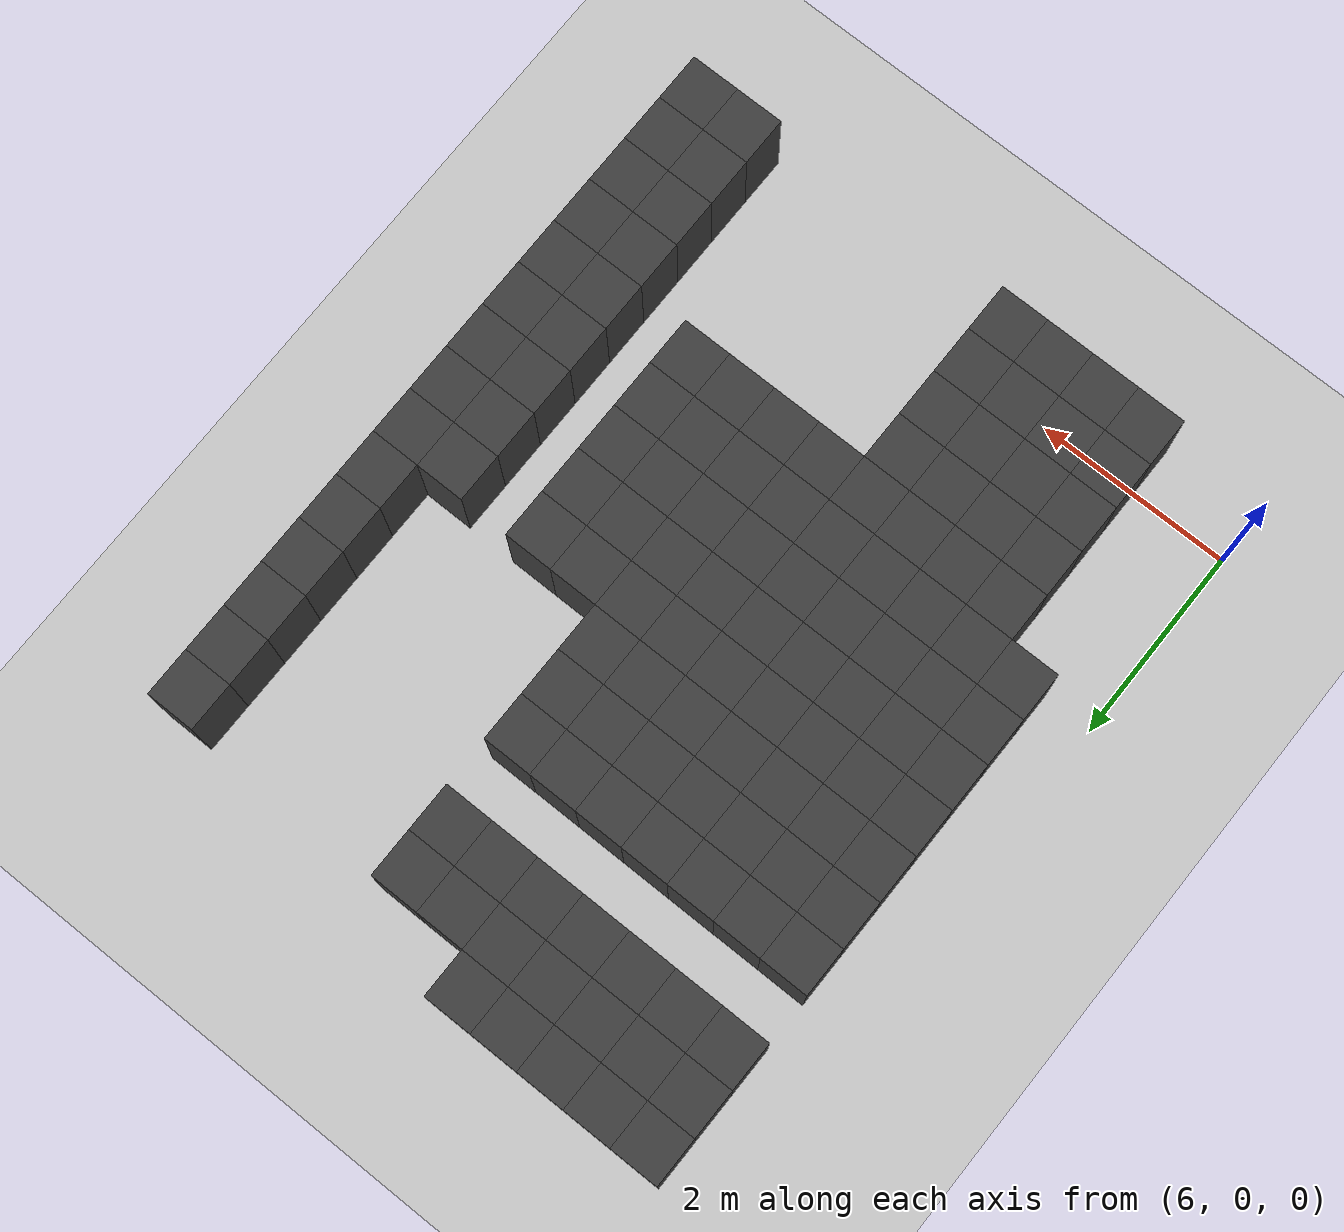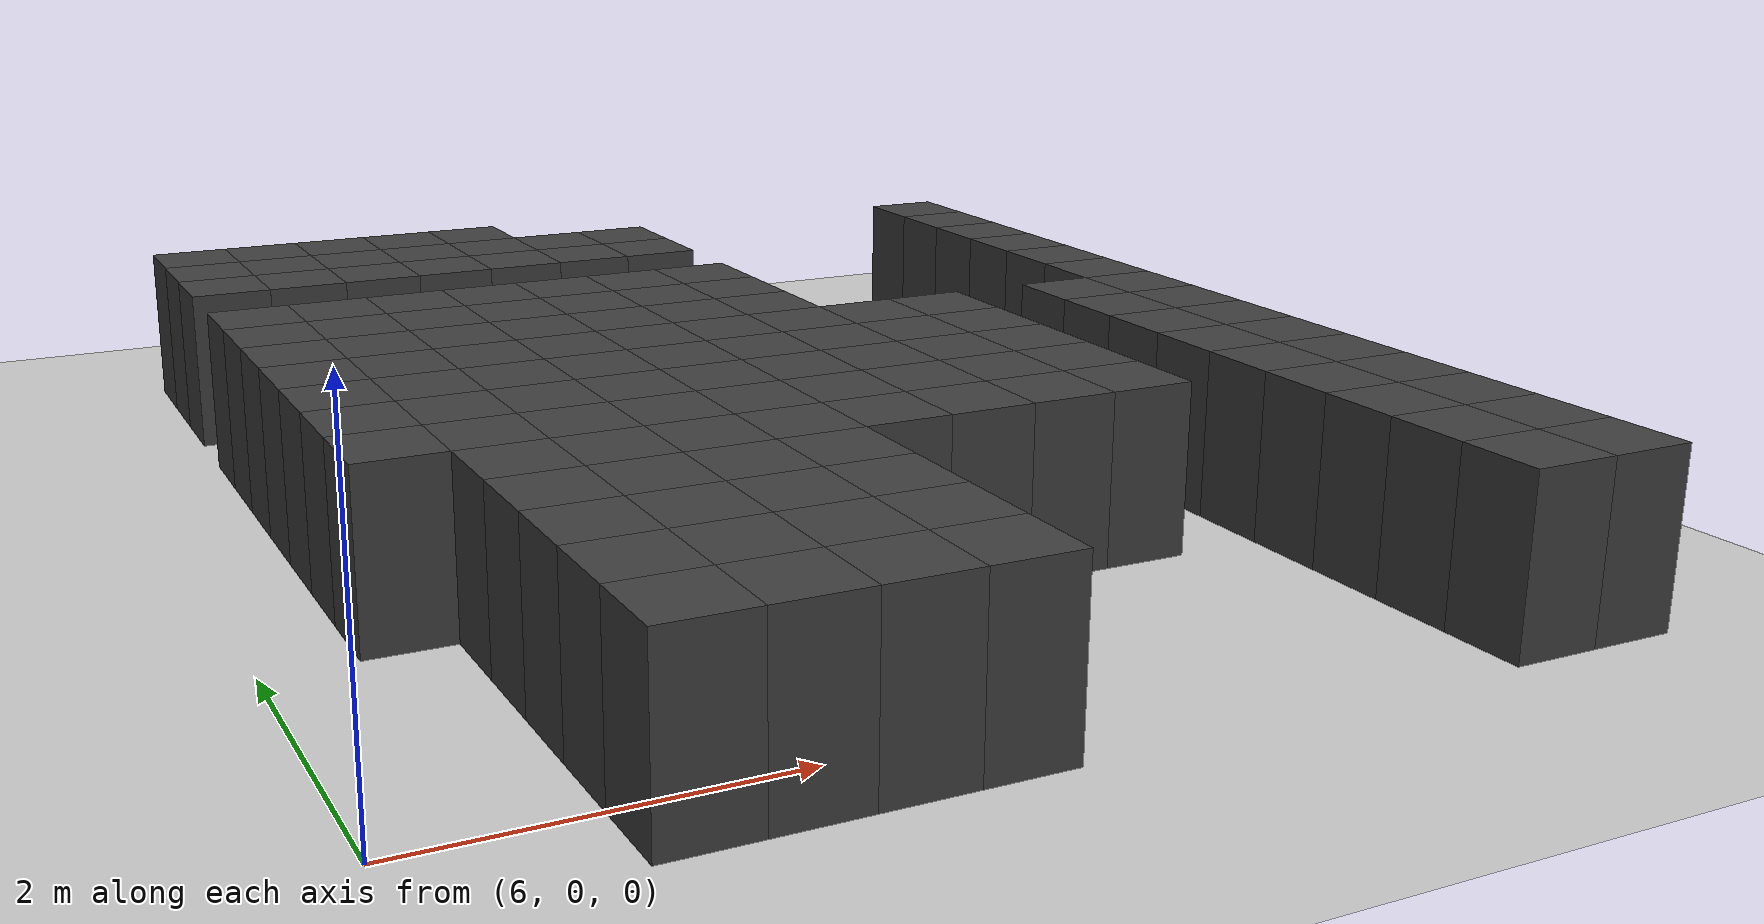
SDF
<sdf version="1.7">
 <world name="map_14074">
  <model name="ground_plane">
   <static>true</static>
   <link name="link">
    <collision name="collision">
     <geometry><plane><normal>0 0 1</normal><size>200 200</size></plane></geometry>
    </collision>
    <visual name="visual">
     <geometry><plane><normal>0 0 1</normal><size>200 200</size></plane></geometry>
     <material><ambient>0.8 0.8 0.8 1</ambient><diffuse>0.8 0.8 0.8 1</diffuse></material>
    </visual>
   </link>
  </model>
  <model name="maze_environment">
   <static>true</static>
   <link name="wall_514">
    <pose>6.750 7.250 0.500 0 0 0</pose>
    <collision name="col"><geometry><box><size>0.5 0.5 1.0</size></box></geometry></collision>
    <visual name="vis">
     <geometry><box><size>0.5 0.5 1.0</size></box></geometry>
     <material><ambient>0.15 0.15 0.15 1</ambient><diffuse>0.25 0.25 0.25 1</diffuse></material>
    </visual>
   </link>
   <link name="wall_515">
    <pose>7.250 7.250 0.500 0 0 0</pose>
    <collision name="col"><geometry><box><size>0.5 0.5 1.0</size></box></geometry></collision>
    <visual name="vis">
     <geometry><box><size>0.5 0.5 1.0</size></box></geometry>
     <material><ambient>0.15 0.15 0.15 1</ambient><diffuse>0.25 0.25 0.25 1</diffuse></material>
    </visual>
   </link>
   <link name="wall_516">
    <pose>7.750 7.250 0.500 0 0 0</pose>
    <collision name="col"><geometry><box><size>0.5 0.5 1.0</size></box></geometry></collision>
    <visual name="vis">
     <geometry><box><size>0.5 0.5 1.0</size></box></geometry>
     <material><ambient>0.15 0.15 0.15 1</ambient><diffuse>0.25 0.25 0.25 1</diffuse></material>
    </visual>
   </link>
   <link name="wall_517">
    <pose>8.250 7.250 0.500 0 0 0</pose>
    <collision name="col"><geometry><box><size>0.5 0.5 1.0</size></box></geometry></collision>
    <visual name="vis">
     <geometry><box><size>0.5 0.5 1.0</size></box></geometry>
     <material><ambient>0.15 0.15 0.15 1</ambient><diffuse>0.25 0.25 0.25 1</diffuse></material>
    </visual>
   </link>
   <link name="wall_518">
    <pose>8.750 7.250 0.500 0 0 0</pose>
    <collision name="col"><geometry><box><size>0.5 0.5 1.0</size></box></geometry></collision>
    <visual name="vis">
     <geometry><box><size>0.5 0.5 1.0</size></box></geometry>
     <material><ambient>0.15 0.15 0.15 1</ambient><diffuse>0.25 0.25 0.25 1</diffuse></material>
    </visual>
   </link>
   <link name="wall_549">
    <pose>6.750 6.750 0.500 0 0 0</pose>
    <collision name="col"><geometry><box><size>0.5 0.5 1.0</size></box></geometry></collision>
    <visual name="vis">
     <geometry><box><size>0.5 0.5 1.0</size></box></geometry>
     <material><ambient>0.15 0.15 0.15 1</ambient><diffuse>0.25 0.25 0.25 1</diffuse></material>
    </visual>
   </link>
   <link name="wall_550">
    <pose>7.250 6.750 0.500 0 0 0</pose>
    <collision name="col"><geometry><box><size>0.5 0.5 1.0</size></box></geometry></collision>
    <visual name="vis">
     <geometry><box><size>0.5 0.5 1.0</size></box></geometry>
     <material><ambient>0.15 0.15 0.15 1</ambient><diffuse>0.25 0.25 0.25 1</diffuse></material>
    </visual>
   </link>
   <link name="wall_551">
    <pose>7.750 6.750 0.500 0 0 0</pose>
    <collision name="col"><geometry><box><size>0.5 0.5 1.0</size></box></geometry></collision>
    <visual name="vis">
     <geometry><box><size>0.5 0.5 1.0</size></box></geometry>
     <material><ambient>0.15 0.15 0.15 1</ambient><diffuse>0.25 0.25 0.25 1</diffuse></material>
    </visual>
   </link>
   <link name="wall_552">
    <pose>8.250 6.750 0.500 0 0 0</pose>
    <collision name="col"><geometry><box><size>0.5 0.5 1.0</size></box></geometry></collision>
    <visual name="vis">
     <geometry><box><size>0.5 0.5 1.0</size></box></geometry>
     <material><ambient>0.15 0.15 0.15 1</ambient><diffuse>0.25 0.25 0.25 1</diffuse></material>
    </visual>
   </link>
   <link name="wall_553">
    <pose>8.750 6.750 0.500 0 0 0</pose>
    <collision name="col"><geometry><box><size>0.5 0.5 1.0</size></box></geometry></collision>
    <visual name="vis">
     <geometry><box><size>0.5 0.5 1.0</size></box></geometry>
     <material><ambient>0.15 0.15 0.15 1</ambient><diffuse>0.25 0.25 0.25 1</diffuse></material>
    </visual>
   </link>
   <link name="wall_554">
    <pose>9.250 6.750 0.500 0 0 0</pose>
    <collision name="col"><geometry><box><size>0.5 0.5 1.0</size></box></geometry></collision>
    <visual name="vis">
     <geometry><box><size>0.5 0.5 1.0</size></box></geometry>
     <material><ambient>0.15 0.15 0.15 1</ambient><diffuse>0.25 0.25 0.25 1</diffuse></material>
    </visual>
   </link>
   <link name="wall_555">
    <pose>9.750 6.750 0.500 0 0 0</pose>
    <collision name="col"><geometry><box><size>0.5 0.5 1.0</size></box></geometry></collision>
    <visual name="vis">
     <geometry><box><size>0.5 0.5 1.0</size></box></geometry>
     <material><ambient>0.15 0.15 0.15 1</ambient><diffuse>0.25 0.25 0.25 1</diffuse></material>
    </visual>
   </link>
   <link name="wall_556">
    <pose>12.250 6.750 0.500 0 0 0</pose>
    <collision name="col"><geometry><box><size>0.5 0.5 1.0</size></box></geometry></collision>
    <visual name="vis">
     <geometry><box><size>0.5 0.5 1.0</size></box></geometry>
     <material><ambient>0.15 0.15 0.15 1</ambient><diffuse>0.25 0.25 0.25 1</diffuse></material>
    </visual>
   </link>
   <link name="wall_579">
    <pose>6.750 6.250 0.500 0 0 0</pose>
    <collision name="col"><geometry><box><size>0.5 0.5 1.0</size></box></geometry></collision>
    <visual name="vis">
     <geometry><box><size>0.5 0.5 1.0</size></box></geometry>
     <material><ambient>0.15 0.15 0.15 1</ambient><diffuse>0.25 0.25 0.25 1</diffuse></material>
    </visual>
   </link>
   <link name="wall_580">
    <pose>7.250 6.250 0.500 0 0 0</pose>
    <collision name="col"><geometry><box><size>0.5 0.5 1.0</size></box></geometry></collision>
    <visual name="vis">
     <geometry><box><size>0.5 0.5 1.0</size></box></geometry>
     <material><ambient>0.15 0.15 0.15 1</ambient><diffuse>0.25 0.25 0.25 1</diffuse></material>
    </visual>
   </link>
   <link name="wall_581">
    <pose>7.750 6.250 0.500 0 0 0</pose>
    <collision name="col"><geometry><box><size>0.5 0.5 1.0</size></box></geometry></collision>
    <visual name="vis">
     <geometry><box><size>0.5 0.5 1.0</size></box></geometry>
     <material><ambient>0.15 0.15 0.15 1</ambient><diffuse>0.25 0.25 0.25 1</diffuse></material>
    </visual>
   </link>
   <link name="wall_582">
    <pose>8.250 6.250 0.500 0 0 0</pose>
    <collision name="col"><geometry><box><size>0.5 0.5 1.0</size></box></geometry></collision>
    <visual name="vis">
     <geometry><box><size>0.5 0.5 1.0</size></box></geometry>
     <material><ambient>0.15 0.15 0.15 1</ambient><diffuse>0.25 0.25 0.25 1</diffuse></material>
    </visual>
   </link>
   <link name="wall_583">
    <pose>8.750 6.250 0.500 0 0 0</pose>
    <collision name="col"><geometry><box><size>0.5 0.5 1.0</size></box></geometry></collision>
    <visual name="vis">
     <geometry><box><size>0.5 0.5 1.0</size></box></geometry>
     <material><ambient>0.15 0.15 0.15 1</ambient><diffuse>0.25 0.25 0.25 1</diffuse></material>
    </visual>
   </link>
   <link name="wall_584">
    <pose>9.250 6.250 0.500 0 0 0</pose>
    <collision name="col"><geometry><box><size>0.5 0.5 1.0</size></box></geometry></collision>
    <visual name="vis">
     <geometry><box><size>0.5 0.5 1.0</size></box></geometry>
     <material><ambient>0.15 0.15 0.15 1</ambient><diffuse>0.25 0.25 0.25 1</diffuse></material>
    </visual>
   </link>
   <link name="wall_585">
    <pose>9.750 6.250 0.500 0 0 0</pose>
    <collision name="col"><geometry><box><size>0.5 0.5 1.0</size></box></geometry></collision>
    <visual name="vis">
     <geometry><box><size>0.5 0.5 1.0</size></box></geometry>
     <material><ambient>0.15 0.15 0.15 1</ambient><diffuse>0.25 0.25 0.25 1</diffuse></material>
    </visual>
   </link>
   <link name="wall_586">
    <pose>12.250 6.250 0.500 0 0 0</pose>
    <collision name="col"><geometry><box><size>0.5 0.5 1.0</size></box></geometry></collision>
    <visual name="vis">
     <geometry><box><size>0.5 0.5 1.0</size></box></geometry>
     <material><ambient>0.15 0.15 0.15 1</ambient><diffuse>0.25 0.25 0.25 1</diffuse></material>
    </visual>
   </link>
   <link name="wall_607">
    <pose>12.250 5.750 0.500 0 0 0</pose>
    <collision name="col"><geometry><box><size>0.5 0.5 1.0</size></box></geometry></collision>
    <visual name="vis">
     <geometry><box><size>0.5 0.5 1.0</size></box></geometry>
     <material><ambient>0.15 0.15 0.15 1</ambient><diffuse>0.25 0.25 0.25 1</diffuse></material>
    </visual>
   </link>
   <link name="wall_630">
    <pose>6.750 5.250 0.500 0 0 0</pose>
    <collision name="col"><geometry><box><size>0.5 0.5 1.0</size></box></geometry></collision>
    <visual name="vis">
     <geometry><box><size>0.5 0.5 1.0</size></box></geometry>
     <material><ambient>0.15 0.15 0.15 1</ambient><diffuse>0.25 0.25 0.25 1</diffuse></material>
    </visual>
   </link>
   <link name="wall_631">
    <pose>7.250 5.250 0.500 0 0 0</pose>
    <collision name="col"><geometry><box><size>0.5 0.5 1.0</size></box></geometry></collision>
    <visual name="vis">
     <geometry><box><size>0.5 0.5 1.0</size></box></geometry>
     <material><ambient>0.15 0.15 0.15 1</ambient><diffuse>0.25 0.25 0.25 1</diffuse></material>
    </visual>
   </link>
   <link name="wall_632">
    <pose>7.750 5.250 0.500 0 0 0</pose>
    <collision name="col"><geometry><box><size>0.5 0.5 1.0</size></box></geometry></collision>
    <visual name="vis">
     <geometry><box><size>0.5 0.5 1.0</size></box></geometry>
     <material><ambient>0.15 0.15 0.15 1</ambient><diffuse>0.25 0.25 0.25 1</diffuse></material>
    </visual>
   </link>
   <link name="wall_633">
    <pose>8.250 5.250 0.500 0 0 0</pose>
    <collision name="col"><geometry><box><size>0.5 0.5 1.0</size></box></geometry></collision>
    <visual name="vis">
     <geometry><box><size>0.5 0.5 1.0</size></box></geometry>
     <material><ambient>0.15 0.15 0.15 1</ambient><diffuse>0.25 0.25 0.25 1</diffuse></material>
    </visual>
   </link>
   <link name="wall_634">
    <pose>8.750 5.250 0.500 0 0 0</pose>
    <collision name="col"><geometry><box><size>0.5 0.5 1.0</size></box></geometry></collision>
    <visual name="vis">
     <geometry><box><size>0.5 0.5 1.0</size></box></geometry>
     <material><ambient>0.15 0.15 0.15 1</ambient><diffuse>0.25 0.25 0.25 1</diffuse></material>
    </visual>
   </link>
   <link name="wall_635">
    <pose>9.250 5.250 0.500 0 0 0</pose>
    <collision name="col"><geometry><box><size>0.5 0.5 1.0</size></box></geometry></collision>
    <visual name="vis">
     <geometry><box><size>0.5 0.5 1.0</size></box></geometry>
     <material><ambient>0.15 0.15 0.15 1</ambient><diffuse>0.25 0.25 0.25 1</diffuse></material>
    </visual>
   </link>
   <link name="wall_636">
    <pose>9.750 5.250 0.500 0 0 0</pose>
    <collision name="col"><geometry><box><size>0.5 0.5 1.0</size></box></geometry></collision>
    <visual name="vis">
     <geometry><box><size>0.5 0.5 1.0</size></box></geometry>
     <material><ambient>0.15 0.15 0.15 1</ambient><diffuse>0.25 0.25 0.25 1</diffuse></material>
    </visual>
   </link>
   <link name="wall_637">
    <pose>12.250 5.250 0.500 0 0 0</pose>
    <collision name="col"><geometry><box><size>0.5 0.5 1.0</size></box></geometry></collision>
    <visual name="vis">
     <geometry><box><size>0.5 0.5 1.0</size></box></geometry>
     <material><ambient>0.15 0.15 0.15 1</ambient><diffuse>0.25 0.25 0.25 1</diffuse></material>
    </visual>
   </link>
   <link name="wall_664">
    <pose>6.750 4.750 0.500 0 0 0</pose>
    <collision name="col"><geometry><box><size>0.5 0.5 1.0</size></box></geometry></collision>
    <visual name="vis">
     <geometry><box><size>0.5 0.5 1.0</size></box></geometry>
     <material><ambient>0.15 0.15 0.15 1</ambient><diffuse>0.25 0.25 0.25 1</diffuse></material>
    </visual>
   </link>
   <link name="wall_665">
    <pose>7.250 4.750 0.500 0 0 0</pose>
    <collision name="col"><geometry><box><size>0.5 0.5 1.0</size></box></geometry></collision>
    <visual name="vis">
     <geometry><box><size>0.5 0.5 1.0</size></box></geometry>
     <material><ambient>0.15 0.15 0.15 1</ambient><diffuse>0.25 0.25 0.25 1</diffuse></material>
    </visual>
   </link>
   <link name="wall_666">
    <pose>7.750 4.750 0.500 0 0 0</pose>
    <collision name="col"><geometry><box><size>0.5 0.5 1.0</size></box></geometry></collision>
    <visual name="vis">
     <geometry><box><size>0.5 0.5 1.0</size></box></geometry>
     <material><ambient>0.15 0.15 0.15 1</ambient><diffuse>0.25 0.25 0.25 1</diffuse></material>
    </visual>
   </link>
   <link name="wall_667">
    <pose>8.250 4.750 0.500 0 0 0</pose>
    <collision name="col"><geometry><box><size>0.5 0.5 1.0</size></box></geometry></collision>
    <visual name="vis">
     <geometry><box><size>0.5 0.5 1.0</size></box></geometry>
     <material><ambient>0.15 0.15 0.15 1</ambient><diffuse>0.25 0.25 0.25 1</diffuse></material>
    </visual>
   </link>
   <link name="wall_668">
    <pose>8.750 4.750 0.500 0 0 0</pose>
    <collision name="col"><geometry><box><size>0.5 0.5 1.0</size></box></geometry></collision>
    <visual name="vis">
     <geometry><box><size>0.5 0.5 1.0</size></box></geometry>
     <material><ambient>0.15 0.15 0.15 1</ambient><diffuse>0.25 0.25 0.25 1</diffuse></material>
    </visual>
   </link>
   <link name="wall_669">
    <pose>9.250 4.750 0.500 0 0 0</pose>
    <collision name="col"><geometry><box><size>0.5 0.5 1.0</size></box></geometry></collision>
    <visual name="vis">
     <geometry><box><size>0.5 0.5 1.0</size></box></geometry>
     <material><ambient>0.15 0.15 0.15 1</ambient><diffuse>0.25 0.25 0.25 1</diffuse></material>
    </visual>
   </link>
   <link name="wall_670">
    <pose>9.750 4.750 0.500 0 0 0</pose>
    <collision name="col"><geometry><box><size>0.5 0.5 1.0</size></box></geometry></collision>
    <visual name="vis">
     <geometry><box><size>0.5 0.5 1.0</size></box></geometry>
     <material><ambient>0.15 0.15 0.15 1</ambient><diffuse>0.25 0.25 0.25 1</diffuse></material>
    </visual>
   </link>
   <link name="wall_671">
    <pose>12.250 4.750 0.500 0 0 0</pose>
    <collision name="col"><geometry><box><size>0.5 0.5 1.0</size></box></geometry></collision>
    <visual name="vis">
     <geometry><box><size>0.5 0.5 1.0</size></box></geometry>
     <material><ambient>0.15 0.15 0.15 1</ambient><diffuse>0.25 0.25 0.25 1</diffuse></material>
    </visual>
   </link>
   <link name="wall_689">
    <pose>6.750 4.250 0.500 0 0 0</pose>
    <collision name="col"><geometry><box><size>0.5 0.5 1.0</size></box></geometry></collision>
    <visual name="vis">
     <geometry><box><size>0.5 0.5 1.0</size></box></geometry>
     <material><ambient>0.15 0.15 0.15 1</ambient><diffuse>0.25 0.25 0.25 1</diffuse></material>
    </visual>
   </link>
   <link name="wall_690">
    <pose>7.250 4.250 0.500 0 0 0</pose>
    <collision name="col"><geometry><box><size>0.5 0.5 1.0</size></box></geometry></collision>
    <visual name="vis">
     <geometry><box><size>0.5 0.5 1.0</size></box></geometry>
     <material><ambient>0.15 0.15 0.15 1</ambient><diffuse>0.25 0.25 0.25 1</diffuse></material>
    </visual>
   </link>
   <link name="wall_691">
    <pose>7.750 4.250 0.500 0 0 0</pose>
    <collision name="col"><geometry><box><size>0.5 0.5 1.0</size></box></geometry></collision>
    <visual name="vis">
     <geometry><box><size>0.5 0.5 1.0</size></box></geometry>
     <material><ambient>0.15 0.15 0.15 1</ambient><diffuse>0.25 0.25 0.25 1</diffuse></material>
    </visual>
   </link>
   <link name="wall_692">
    <pose>8.250 4.250 0.500 0 0 0</pose>
    <collision name="col"><geometry><box><size>0.5 0.5 1.0</size></box></geometry></collision>
    <visual name="vis">
     <geometry><box><size>0.5 0.5 1.0</size></box></geometry>
     <material><ambient>0.15 0.15 0.15 1</ambient><diffuse>0.25 0.25 0.25 1</diffuse></material>
    </visual>
   </link>
   <link name="wall_693">
    <pose>8.750 4.250 0.500 0 0 0</pose>
    <collision name="col"><geometry><box><size>0.5 0.5 1.0</size></box></geometry></collision>
    <visual name="vis">
     <geometry><box><size>0.5 0.5 1.0</size></box></geometry>
     <material><ambient>0.15 0.15 0.15 1</ambient><diffuse>0.25 0.25 0.25 1</diffuse></material>
    </visual>
   </link>
   <link name="wall_694">
    <pose>9.250 4.250 0.500 0 0 0</pose>
    <collision name="col"><geometry><box><size>0.5 0.5 1.0</size></box></geometry></collision>
    <visual name="vis">
     <geometry><box><size>0.5 0.5 1.0</size></box></geometry>
     <material><ambient>0.15 0.15 0.15 1</ambient><diffuse>0.25 0.25 0.25 1</diffuse></material>
    </visual>
   </link>
   <link name="wall_695">
    <pose>9.750 4.250 0.500 0 0 0</pose>
    <collision name="col"><geometry><box><size>0.5 0.5 1.0</size></box></geometry></collision>
    <visual name="vis">
     <geometry><box><size>0.5 0.5 1.0</size></box></geometry>
     <material><ambient>0.15 0.15 0.15 1</ambient><diffuse>0.25 0.25 0.25 1</diffuse></material>
    </visual>
   </link>
   <link name="wall_696">
    <pose>12.250 4.250 0.500 0 0 0</pose>
    <collision name="col"><geometry><box><size>0.5 0.5 1.0</size></box></geometry></collision>
    <visual name="vis">
     <geometry><box><size>0.5 0.5 1.0</size></box></geometry>
     <material><ambient>0.15 0.15 0.15 1</ambient><diffuse>0.25 0.25 0.25 1</diffuse></material>
    </visual>
   </link>
   <link name="wall_714">
    <pose>6.750 3.750 0.500 0 0 0</pose>
    <collision name="col"><geometry><box><size>0.5 0.5 1.0</size></box></geometry></collision>
    <visual name="vis">
     <geometry><box><size>0.5 0.5 1.0</size></box></geometry>
     <material><ambient>0.15 0.15 0.15 1</ambient><diffuse>0.25 0.25 0.25 1</diffuse></material>
    </visual>
   </link>
   <link name="wall_715">
    <pose>7.250 3.750 0.500 0 0 0</pose>
    <collision name="col"><geometry><box><size>0.5 0.5 1.0</size></box></geometry></collision>
    <visual name="vis">
     <geometry><box><size>0.5 0.5 1.0</size></box></geometry>
     <material><ambient>0.15 0.15 0.15 1</ambient><diffuse>0.25 0.25 0.25 1</diffuse></material>
    </visual>
   </link>
   <link name="wall_716">
    <pose>7.750 3.750 0.500 0 0 0</pose>
    <collision name="col"><geometry><box><size>0.5 0.5 1.0</size></box></geometry></collision>
    <visual name="vis">
     <geometry><box><size>0.5 0.5 1.0</size></box></geometry>
     <material><ambient>0.15 0.15 0.15 1</ambient><diffuse>0.25 0.25 0.25 1</diffuse></material>
    </visual>
   </link>
   <link name="wall_717">
    <pose>8.250 3.750 0.500 0 0 0</pose>
    <collision name="col"><geometry><box><size>0.5 0.5 1.0</size></box></geometry></collision>
    <visual name="vis">
     <geometry><box><size>0.5 0.5 1.0</size></box></geometry>
     <material><ambient>0.15 0.15 0.15 1</ambient><diffuse>0.25 0.25 0.25 1</diffuse></material>
    </visual>
   </link>
   <link name="wall_718">
    <pose>8.750 3.750 0.500 0 0 0</pose>
    <collision name="col"><geometry><box><size>0.5 0.5 1.0</size></box></geometry></collision>
    <visual name="vis">
     <geometry><box><size>0.5 0.5 1.0</size></box></geometry>
     <material><ambient>0.15 0.15 0.15 1</ambient><diffuse>0.25 0.25 0.25 1</diffuse></material>
    </visual>
   </link>
   <link name="wall_719">
    <pose>9.250 3.750 0.500 0 0 0</pose>
    <collision name="col"><geometry><box><size>0.5 0.5 1.0</size></box></geometry></collision>
    <visual name="vis">
     <geometry><box><size>0.5 0.5 1.0</size></box></geometry>
     <material><ambient>0.15 0.15 0.15 1</ambient><diffuse>0.25 0.25 0.25 1</diffuse></material>
    </visual>
   </link>
   <link name="wall_720">
    <pose>9.750 3.750 0.500 0 0 0</pose>
    <collision name="col"><geometry><box><size>0.5 0.5 1.0</size></box></geometry></collision>
    <visual name="vis">
     <geometry><box><size>0.5 0.5 1.0</size></box></geometry>
     <material><ambient>0.15 0.15 0.15 1</ambient><diffuse>0.25 0.25 0.25 1</diffuse></material>
    </visual>
   </link>
   <link name="wall_721">
    <pose>10.250 3.750 0.500 0 0 0</pose>
    <collision name="col"><geometry><box><size>0.5 0.5 1.0</size></box></geometry></collision>
    <visual name="vis">
     <geometry><box><size>0.5 0.5 1.0</size></box></geometry>
     <material><ambient>0.15 0.15 0.15 1</ambient><diffuse>0.25 0.25 0.25 1</diffuse></material>
    </visual>
   </link>
   <link name="wall_722">
    <pose>10.750 3.750 0.500 0 0 0</pose>
    <collision name="col"><geometry><box><size>0.5 0.5 1.0</size></box></geometry></collision>
    <visual name="vis">
     <geometry><box><size>0.5 0.5 1.0</size></box></geometry>
     <material><ambient>0.15 0.15 0.15 1</ambient><diffuse>0.25 0.25 0.25 1</diffuse></material>
    </visual>
   </link>
   <link name="wall_723">
    <pose>11.750 3.750 0.500 0 0 0</pose>
    <collision name="col"><geometry><box><size>0.5 0.5 1.0</size></box></geometry></collision>
    <visual name="vis">
     <geometry><box><size>0.5 0.5 1.0</size></box></geometry>
     <material><ambient>0.15 0.15 0.15 1</ambient><diffuse>0.25 0.25 0.25 1</diffuse></material>
    </visual>
   </link>
   <link name="wall_724">
    <pose>12.250 3.750 0.500 0 0 0</pose>
    <collision name="col"><geometry><box><size>0.5 0.5 1.0</size></box></geometry></collision>
    <visual name="vis">
     <geometry><box><size>0.5 0.5 1.0</size></box></geometry>
     <material><ambient>0.15 0.15 0.15 1</ambient><diffuse>0.25 0.25 0.25 1</diffuse></material>
    </visual>
   </link>
   <link name="wall_742">
    <pose>6.750 3.250 0.500 0 0 0</pose>
    <collision name="col"><geometry><box><size>0.5 0.5 1.0</size></box></geometry></collision>
    <visual name="vis">
     <geometry><box><size>0.5 0.5 1.0</size></box></geometry>
     <material><ambient>0.15 0.15 0.15 1</ambient><diffuse>0.25 0.25 0.25 1</diffuse></material>
    </visual>
   </link>
   <link name="wall_743">
    <pose>7.250 3.250 0.500 0 0 0</pose>
    <collision name="col"><geometry><box><size>0.5 0.5 1.0</size></box></geometry></collision>
    <visual name="vis">
     <geometry><box><size>0.5 0.5 1.0</size></box></geometry>
     <material><ambient>0.15 0.15 0.15 1</ambient><diffuse>0.25 0.25 0.25 1</diffuse></material>
    </visual>
   </link>
   <link name="wall_744">
    <pose>7.750 3.250 0.500 0 0 0</pose>
    <collision name="col"><geometry><box><size>0.5 0.5 1.0</size></box></geometry></collision>
    <visual name="vis">
     <geometry><box><size>0.5 0.5 1.0</size></box></geometry>
     <material><ambient>0.15 0.15 0.15 1</ambient><diffuse>0.25 0.25 0.25 1</diffuse></material>
    </visual>
   </link>
   <link name="wall_745">
    <pose>8.250 3.250 0.500 0 0 0</pose>
    <collision name="col"><geometry><box><size>0.5 0.5 1.0</size></box></geometry></collision>
    <visual name="vis">
     <geometry><box><size>0.5 0.5 1.0</size></box></geometry>
     <material><ambient>0.15 0.15 0.15 1</ambient><diffuse>0.25 0.25 0.25 1</diffuse></material>
    </visual>
   </link>
   <link name="wall_746">
    <pose>8.750 3.250 0.500 0 0 0</pose>
    <collision name="col"><geometry><box><size>0.5 0.5 1.0</size></box></geometry></collision>
    <visual name="vis">
     <geometry><box><size>0.5 0.5 1.0</size></box></geometry>
     <material><ambient>0.15 0.15 0.15 1</ambient><diffuse>0.25 0.25 0.25 1</diffuse></material>
    </visual>
   </link>
   <link name="wall_747">
    <pose>9.250 3.250 0.500 0 0 0</pose>
    <collision name="col"><geometry><box><size>0.5 0.5 1.0</size></box></geometry></collision>
    <visual name="vis">
     <geometry><box><size>0.5 0.5 1.0</size></box></geometry>
     <material><ambient>0.15 0.15 0.15 1</ambient><diffuse>0.25 0.25 0.25 1</diffuse></material>
    </visual>
   </link>
   <link name="wall_748">
    <pose>9.750 3.250 0.500 0 0 0</pose>
    <collision name="col"><geometry><box><size>0.5 0.5 1.0</size></box></geometry></collision>
    <visual name="vis">
     <geometry><box><size>0.5 0.5 1.0</size></box></geometry>
     <material><ambient>0.15 0.15 0.15 1</ambient><diffuse>0.25 0.25 0.25 1</diffuse></material>
    </visual>
   </link>
   <link name="wall_749">
    <pose>10.250 3.250 0.500 0 0 0</pose>
    <collision name="col"><geometry><box><size>0.5 0.5 1.0</size></box></geometry></collision>
    <visual name="vis">
     <geometry><box><size>0.5 0.5 1.0</size></box></geometry>
     <material><ambient>0.15 0.15 0.15 1</ambient><diffuse>0.25 0.25 0.25 1</diffuse></material>
    </visual>
   </link>
   <link name="wall_750">
    <pose>10.750 3.250 0.500 0 0 0</pose>
    <collision name="col"><geometry><box><size>0.5 0.5 1.0</size></box></geometry></collision>
    <visual name="vis">
     <geometry><box><size>0.5 0.5 1.0</size></box></geometry>
     <material><ambient>0.15 0.15 0.15 1</ambient><diffuse>0.25 0.25 0.25 1</diffuse></material>
    </visual>
   </link>
   <link name="wall_751">
    <pose>11.750 3.250 0.500 0 0 0</pose>
    <collision name="col"><geometry><box><size>0.5 0.5 1.0</size></box></geometry></collision>
    <visual name="vis">
     <geometry><box><size>0.5 0.5 1.0</size></box></geometry>
     <material><ambient>0.15 0.15 0.15 1</ambient><diffuse>0.25 0.25 0.25 1</diffuse></material>
    </visual>
   </link>
   <link name="wall_752">
    <pose>12.250 3.250 0.500 0 0 0</pose>
    <collision name="col"><geometry><box><size>0.5 0.5 1.0</size></box></geometry></collision>
    <visual name="vis">
     <geometry><box><size>0.5 0.5 1.0</size></box></geometry>
     <material><ambient>0.15 0.15 0.15 1</ambient><diffuse>0.25 0.25 0.25 1</diffuse></material>
    </visual>
   </link>
   <link name="wall_775">
    <pose>6.750 2.750 0.500 0 0 0</pose>
    <collision name="col"><geometry><box><size>0.5 0.5 1.0</size></box></geometry></collision>
    <visual name="vis">
     <geometry><box><size>0.5 0.5 1.0</size></box></geometry>
     <material><ambient>0.15 0.15 0.15 1</ambient><diffuse>0.25 0.25 0.25 1</diffuse></material>
    </visual>
   </link>
   <link name="wall_776">
    <pose>7.250 2.750 0.500 0 0 0</pose>
    <collision name="col"><geometry><box><size>0.5 0.5 1.0</size></box></geometry></collision>
    <visual name="vis">
     <geometry><box><size>0.5 0.5 1.0</size></box></geometry>
     <material><ambient>0.15 0.15 0.15 1</ambient><diffuse>0.25 0.25 0.25 1</diffuse></material>
    </visual>
   </link>
   <link name="wall_777">
    <pose>7.750 2.750 0.500 0 0 0</pose>
    <collision name="col"><geometry><box><size>0.5 0.5 1.0</size></box></geometry></collision>
    <visual name="vis">
     <geometry><box><size>0.5 0.5 1.0</size></box></geometry>
     <material><ambient>0.15 0.15 0.15 1</ambient><diffuse>0.25 0.25 0.25 1</diffuse></material>
    </visual>
   </link>
   <link name="wall_778">
    <pose>8.250 2.750 0.500 0 0 0</pose>
    <collision name="col"><geometry><box><size>0.5 0.5 1.0</size></box></geometry></collision>
    <visual name="vis">
     <geometry><box><size>0.5 0.5 1.0</size></box></geometry>
     <material><ambient>0.15 0.15 0.15 1</ambient><diffuse>0.25 0.25 0.25 1</diffuse></material>
    </visual>
   </link>
   <link name="wall_779">
    <pose>8.750 2.750 0.500 0 0 0</pose>
    <collision name="col"><geometry><box><size>0.5 0.5 1.0</size></box></geometry></collision>
    <visual name="vis">
     <geometry><box><size>0.5 0.5 1.0</size></box></geometry>
     <material><ambient>0.15 0.15 0.15 1</ambient><diffuse>0.25 0.25 0.25 1</diffuse></material>
    </visual>
   </link>
   <link name="wall_780">
    <pose>9.250 2.750 0.500 0 0 0</pose>
    <collision name="col"><geometry><box><size>0.5 0.5 1.0</size></box></geometry></collision>
    <visual name="vis">
     <geometry><box><size>0.5 0.5 1.0</size></box></geometry>
     <material><ambient>0.15 0.15 0.15 1</ambient><diffuse>0.25 0.25 0.25 1</diffuse></material>
    </visual>
   </link>
   <link name="wall_781">
    <pose>9.750 2.750 0.500 0 0 0</pose>
    <collision name="col"><geometry><box><size>0.5 0.5 1.0</size></box></geometry></collision>
    <visual name="vis">
     <geometry><box><size>0.5 0.5 1.0</size></box></geometry>
     <material><ambient>0.15 0.15 0.15 1</ambient><diffuse>0.25 0.25 0.25 1</diffuse></material>
    </visual>
   </link>
   <link name="wall_782">
    <pose>10.250 2.750 0.500 0 0 0</pose>
    <collision name="col"><geometry><box><size>0.5 0.5 1.0</size></box></geometry></collision>
    <visual name="vis">
     <geometry><box><size>0.5 0.5 1.0</size></box></geometry>
     <material><ambient>0.15 0.15 0.15 1</ambient><diffuse>0.25 0.25 0.25 1</diffuse></material>
    </visual>
   </link>
   <link name="wall_783">
    <pose>10.750 2.750 0.500 0 0 0</pose>
    <collision name="col"><geometry><box><size>0.5 0.5 1.0</size></box></geometry></collision>
    <visual name="vis">
     <geometry><box><size>0.5 0.5 1.0</size></box></geometry>
     <material><ambient>0.15 0.15 0.15 1</ambient><diffuse>0.25 0.25 0.25 1</diffuse></material>
    </visual>
   </link>
   <link name="wall_784">
    <pose>11.750 2.750 0.500 0 0 0</pose>
    <collision name="col"><geometry><box><size>0.5 0.5 1.0</size></box></geometry></collision>
    <visual name="vis">
     <geometry><box><size>0.5 0.5 1.0</size></box></geometry>
     <material><ambient>0.15 0.15 0.15 1</ambient><diffuse>0.25 0.25 0.25 1</diffuse></material>
    </visual>
   </link>
   <link name="wall_785">
    <pose>12.250 2.750 0.500 0 0 0</pose>
    <collision name="col"><geometry><box><size>0.5 0.5 1.0</size></box></geometry></collision>
    <visual name="vis">
     <geometry><box><size>0.5 0.5 1.0</size></box></geometry>
     <material><ambient>0.15 0.15 0.15 1</ambient><diffuse>0.25 0.25 0.25 1</diffuse></material>
    </visual>
   </link>
   <link name="wall_816">
    <pose>6.750 2.250 0.500 0 0 0</pose>
    <collision name="col"><geometry><box><size>0.5 0.5 1.0</size></box></geometry></collision>
    <visual name="vis">
     <geometry><box><size>0.5 0.5 1.0</size></box></geometry>
     <material><ambient>0.15 0.15 0.15 1</ambient><diffuse>0.25 0.25 0.25 1</diffuse></material>
    </visual>
   </link>
   <link name="wall_817">
    <pose>7.250 2.250 0.500 0 0 0</pose>
    <collision name="col"><geometry><box><size>0.5 0.5 1.0</size></box></geometry></collision>
    <visual name="vis">
     <geometry><box><size>0.5 0.5 1.0</size></box></geometry>
     <material><ambient>0.15 0.15 0.15 1</ambient><diffuse>0.25 0.25 0.25 1</diffuse></material>
    </visual>
   </link>
   <link name="wall_818">
    <pose>7.750 2.250 0.500 0 0 0</pose>
    <collision name="col"><geometry><box><size>0.5 0.5 1.0</size></box></geometry></collision>
    <visual name="vis">
     <geometry><box><size>0.5 0.5 1.0</size></box></geometry>
     <material><ambient>0.15 0.15 0.15 1</ambient><diffuse>0.25 0.25 0.25 1</diffuse></material>
    </visual>
   </link>
   <link name="wall_819">
    <pose>8.250 2.250 0.500 0 0 0</pose>
    <collision name="col"><geometry><box><size>0.5 0.5 1.0</size></box></geometry></collision>
    <visual name="vis">
     <geometry><box><size>0.5 0.5 1.0</size></box></geometry>
     <material><ambient>0.15 0.15 0.15 1</ambient><diffuse>0.25 0.25 0.25 1</diffuse></material>
    </visual>
   </link>
   <link name="wall_820">
    <pose>8.750 2.250 0.500 0 0 0</pose>
    <collision name="col"><geometry><box><size>0.5 0.5 1.0</size></box></geometry></collision>
    <visual name="vis">
     <geometry><box><size>0.5 0.5 1.0</size></box></geometry>
     <material><ambient>0.15 0.15 0.15 1</ambient><diffuse>0.25 0.25 0.25 1</diffuse></material>
    </visual>
   </link>
   <link name="wall_821">
    <pose>9.250 2.250 0.500 0 0 0</pose>
    <collision name="col"><geometry><box><size>0.5 0.5 1.0</size></box></geometry></collision>
    <visual name="vis">
     <geometry><box><size>0.5 0.5 1.0</size></box></geometry>
     <material><ambient>0.15 0.15 0.15 1</ambient><diffuse>0.25 0.25 0.25 1</diffuse></material>
    </visual>
   </link>
   <link name="wall_822">
    <pose>9.750 2.250 0.500 0 0 0</pose>
    <collision name="col"><geometry><box><size>0.5 0.5 1.0</size></box></geometry></collision>
    <visual name="vis">
     <geometry><box><size>0.5 0.5 1.0</size></box></geometry>
     <material><ambient>0.15 0.15 0.15 1</ambient><diffuse>0.25 0.25 0.25 1</diffuse></material>
    </visual>
   </link>
   <link name="wall_823">
    <pose>10.250 2.250 0.500 0 0 0</pose>
    <collision name="col"><geometry><box><size>0.5 0.5 1.0</size></box></geometry></collision>
    <visual name="vis">
     <geometry><box><size>0.5 0.5 1.0</size></box></geometry>
     <material><ambient>0.15 0.15 0.15 1</ambient><diffuse>0.25 0.25 0.25 1</diffuse></material>
    </visual>
   </link>
   <link name="wall_824">
    <pose>10.750 2.250 0.500 0 0 0</pose>
    <collision name="col"><geometry><box><size>0.5 0.5 1.0</size></box></geometry></collision>
    <visual name="vis">
     <geometry><box><size>0.5 0.5 1.0</size></box></geometry>
     <material><ambient>0.15 0.15 0.15 1</ambient><diffuse>0.25 0.25 0.25 1</diffuse></material>
    </visual>
   </link>
   <link name="wall_825">
    <pose>11.750 2.250 0.500 0 0 0</pose>
    <collision name="col"><geometry><box><size>0.5 0.5 1.0</size></box></geometry></collision>
    <visual name="vis">
     <geometry><box><size>0.5 0.5 1.0</size></box></geometry>
     <material><ambient>0.15 0.15 0.15 1</ambient><diffuse>0.25 0.25 0.25 1</diffuse></material>
    </visual>
   </link>
   <link name="wall_826">
    <pose>12.250 2.250 0.500 0 0 0</pose>
    <collision name="col"><geometry><box><size>0.5 0.5 1.0</size></box></geometry></collision>
    <visual name="vis">
     <geometry><box><size>0.5 0.5 1.0</size></box></geometry>
     <material><ambient>0.15 0.15 0.15 1</ambient><diffuse>0.25 0.25 0.25 1</diffuse></material>
    </visual>
   </link>
   <link name="wall_858">
    <pose>7.250 1.750 0.500 0 0 0</pose>
    <collision name="col"><geometry><box><size>0.5 0.5 1.0</size></box></geometry></collision>
    <visual name="vis">
     <geometry><box><size>0.5 0.5 1.0</size></box></geometry>
     <material><ambient>0.15 0.15 0.15 1</ambient><diffuse>0.25 0.25 0.25 1</diffuse></material>
    </visual>
   </link>
   <link name="wall_859">
    <pose>7.750 1.750 0.500 0 0 0</pose>
    <collision name="col"><geometry><box><size>0.5 0.5 1.0</size></box></geometry></collision>
    <visual name="vis">
     <geometry><box><size>0.5 0.5 1.0</size></box></geometry>
     <material><ambient>0.15 0.15 0.15 1</ambient><diffuse>0.25 0.25 0.25 1</diffuse></material>
    </visual>
   </link>
   <link name="wall_860">
    <pose>8.250 1.750 0.500 0 0 0</pose>
    <collision name="col"><geometry><box><size>0.5 0.5 1.0</size></box></geometry></collision>
    <visual name="vis">
     <geometry><box><size>0.5 0.5 1.0</size></box></geometry>
     <material><ambient>0.15 0.15 0.15 1</ambient><diffuse>0.25 0.25 0.25 1</diffuse></material>
    </visual>
   </link>
   <link name="wall_861">
    <pose>8.750 1.750 0.500 0 0 0</pose>
    <collision name="col"><geometry><box><size>0.5 0.5 1.0</size></box></geometry></collision>
    <visual name="vis">
     <geometry><box><size>0.5 0.5 1.0</size></box></geometry>
     <material><ambient>0.15 0.15 0.15 1</ambient><diffuse>0.25 0.25 0.25 1</diffuse></material>
    </visual>
   </link>
   <link name="wall_862">
    <pose>9.250 1.750 0.500 0 0 0</pose>
    <collision name="col"><geometry><box><size>0.5 0.5 1.0</size></box></geometry></collision>
    <visual name="vis">
     <geometry><box><size>0.5 0.5 1.0</size></box></geometry>
     <material><ambient>0.15 0.15 0.15 1</ambient><diffuse>0.25 0.25 0.25 1</diffuse></material>
    </visual>
   </link>
   <link name="wall_863">
    <pose>9.750 1.750 0.500 0 0 0</pose>
    <collision name="col"><geometry><box><size>0.5 0.5 1.0</size></box></geometry></collision>
    <visual name="vis">
     <geometry><box><size>0.5 0.5 1.0</size></box></geometry>
     <material><ambient>0.15 0.15 0.15 1</ambient><diffuse>0.25 0.25 0.25 1</diffuse></material>
    </visual>
   </link>
   <link name="wall_864">
    <pose>10.250 1.750 0.500 0 0 0</pose>
    <collision name="col"><geometry><box><size>0.5 0.5 1.0</size></box></geometry></collision>
    <visual name="vis">
     <geometry><box><size>0.5 0.5 1.0</size></box></geometry>
     <material><ambient>0.15 0.15 0.15 1</ambient><diffuse>0.25 0.25 0.25 1</diffuse></material>
    </visual>
   </link>
   <link name="wall_865">
    <pose>10.750 1.750 0.500 0 0 0</pose>
    <collision name="col"><geometry><box><size>0.5 0.5 1.0</size></box></geometry></collision>
    <visual name="vis">
     <geometry><box><size>0.5 0.5 1.0</size></box></geometry>
     <material><ambient>0.15 0.15 0.15 1</ambient><diffuse>0.25 0.25 0.25 1</diffuse></material>
    </visual>
   </link>
   <link name="wall_866">
    <pose>11.750 1.750 0.500 0 0 0</pose>
    <collision name="col"><geometry><box><size>0.5 0.5 1.0</size></box></geometry></collision>
    <visual name="vis">
     <geometry><box><size>0.5 0.5 1.0</size></box></geometry>
     <material><ambient>0.15 0.15 0.15 1</ambient><diffuse>0.25 0.25 0.25 1</diffuse></material>
    </visual>
   </link>
   <link name="wall_867">
    <pose>12.250 1.750 0.500 0 0 0</pose>
    <collision name="col"><geometry><box><size>0.5 0.5 1.0</size></box></geometry></collision>
    <visual name="vis">
     <geometry><box><size>0.5 0.5 1.0</size></box></geometry>
     <material><ambient>0.15 0.15 0.15 1</ambient><diffuse>0.25 0.25 0.25 1</diffuse></material>
    </visual>
   </link>
   <link name="wall_905">
    <pose>7.250 1.250 0.500 0 0 0</pose>
    <collision name="col"><geometry><box><size>0.5 0.5 1.0</size></box></geometry></collision>
    <visual name="vis">
     <geometry><box><size>0.5 0.5 1.0</size></box></geometry>
     <material><ambient>0.15 0.15 0.15 1</ambient><diffuse>0.25 0.25 0.25 1</diffuse></material>
    </visual>
   </link>
   <link name="wall_906">
    <pose>7.750 1.250 0.500 0 0 0</pose>
    <collision name="col"><geometry><box><size>0.5 0.5 1.0</size></box></geometry></collision>
    <visual name="vis">
     <geometry><box><size>0.5 0.5 1.0</size></box></geometry>
     <material><ambient>0.15 0.15 0.15 1</ambient><diffuse>0.25 0.25 0.25 1</diffuse></material>
    </visual>
   </link>
   <link name="wall_907">
    <pose>8.250 1.250 0.500 0 0 0</pose>
    <collision name="col"><geometry><box><size>0.5 0.5 1.0</size></box></geometry></collision>
    <visual name="vis">
     <geometry><box><size>0.5 0.5 1.0</size></box></geometry>
     <material><ambient>0.15 0.15 0.15 1</ambient><diffuse>0.25 0.25 0.25 1</diffuse></material>
    </visual>
   </link>
   <link name="wall_908">
    <pose>8.750 1.250 0.500 0 0 0</pose>
    <collision name="col"><geometry><box><size>0.5 0.5 1.0</size></box></geometry></collision>
    <visual name="vis">
     <geometry><box><size>0.5 0.5 1.0</size></box></geometry>
     <material><ambient>0.15 0.15 0.15 1</ambient><diffuse>0.25 0.25 0.25 1</diffuse></material>
    </visual>
   </link>
   <link name="wall_909">
    <pose>11.750 1.250 0.500 0 0 0</pose>
    <collision name="col"><geometry><box><size>0.5 0.5 1.0</size></box></geometry></collision>
    <visual name="vis">
     <geometry><box><size>0.5 0.5 1.0</size></box></geometry>
     <material><ambient>0.15 0.15 0.15 1</ambient><diffuse>0.25 0.25 0.25 1</diffuse></material>
    </visual>
   </link>
   <link name="wall_910">
    <pose>12.250 1.250 0.500 0 0 0</pose>
    <collision name="col"><geometry><box><size>0.5 0.5 1.0</size></box></geometry></collision>
    <visual name="vis">
     <geometry><box><size>0.5 0.5 1.0</size></box></geometry>
     <material><ambient>0.15 0.15 0.15 1</ambient><diffuse>0.25 0.25 0.25 1</diffuse></material>
    </visual>
   </link>
   <link name="wall_943">
    <pose>7.250 0.750 0.500 0 0 0</pose>
    <collision name="col"><geometry><box><size>0.5 0.5 1.0</size></box></geometry></collision>
    <visual name="vis">
     <geometry><box><size>0.5 0.5 1.0</size></box></geometry>
     <material><ambient>0.15 0.15 0.15 1</ambient><diffuse>0.25 0.25 0.25 1</diffuse></material>
    </visual>
   </link>
   <link name="wall_944">
    <pose>7.750 0.750 0.500 0 0 0</pose>
    <collision name="col"><geometry><box><size>0.5 0.5 1.0</size></box></geometry></collision>
    <visual name="vis">
     <geometry><box><size>0.5 0.5 1.0</size></box></geometry>
     <material><ambient>0.15 0.15 0.15 1</ambient><diffuse>0.25 0.25 0.25 1</diffuse></material>
    </visual>
   </link>
   <link name="wall_945">
    <pose>8.250 0.750 0.500 0 0 0</pose>
    <collision name="col"><geometry><box><size>0.5 0.5 1.0</size></box></geometry></collision>
    <visual name="vis">
     <geometry><box><size>0.5 0.5 1.0</size></box></geometry>
     <material><ambient>0.15 0.15 0.15 1</ambient><diffuse>0.25 0.25 0.25 1</diffuse></material>
    </visual>
   </link>
   <link name="wall_946">
    <pose>8.750 0.750 0.500 0 0 0</pose>
    <collision name="col"><geometry><box><size>0.5 0.5 1.0</size></box></geometry></collision>
    <visual name="vis">
     <geometry><box><size>0.5 0.5 1.0</size></box></geometry>
     <material><ambient>0.15 0.15 0.15 1</ambient><diffuse>0.25 0.25 0.25 1</diffuse></material>
    </visual>
   </link>
   <link name="wall_947">
    <pose>11.750 0.750 0.500 0 0 0</pose>
    <collision name="col"><geometry><box><size>0.5 0.5 1.0</size></box></geometry></collision>
    <visual name="vis">
     <geometry><box><size>0.5 0.5 1.0</size></box></geometry>
     <material><ambient>0.15 0.15 0.15 1</ambient><diffuse>0.25 0.25 0.25 1</diffuse></material>
    </visual>
   </link>
   <link name="wall_948">
    <pose>12.250 0.750 0.500 0 0 0</pose>
    <collision name="col"><geometry><box><size>0.5 0.5 1.0</size></box></geometry></collision>
    <visual name="vis">
     <geometry><box><size>0.5 0.5 1.0</size></box></geometry>
     <material><ambient>0.15 0.15 0.15 1</ambient><diffuse>0.25 0.25 0.25 1</diffuse></material>
    </visual>
   </link>
   <link name="wall_981">
    <pose>7.250 0.250 0.500 0 0 0</pose>
    <collision name="col"><geometry><box><size>0.5 0.5 1.0</size></box></geometry></collision>
    <visual name="vis">
     <geometry><box><size>0.5 0.5 1.0</size></box></geometry>
     <material><ambient>0.15 0.15 0.15 1</ambient><diffuse>0.25 0.25 0.25 1</diffuse></material>
    </visual>
   </link>
   <link name="wall_982">
    <pose>7.750 0.250 0.500 0 0 0</pose>
    <collision name="col"><geometry><box><size>0.5 0.5 1.0</size></box></geometry></collision>
    <visual name="vis">
     <geometry><box><size>0.5 0.5 1.0</size></box></geometry>
     <material><ambient>0.15 0.15 0.15 1</ambient><diffuse>0.25 0.25 0.25 1</diffuse></material>
    </visual>
   </link>
   <link name="wall_983">
    <pose>8.250 0.250 0.500 0 0 0</pose>
    <collision name="col"><geometry><box><size>0.5 0.5 1.0</size></box></geometry></collision>
    <visual name="vis">
     <geometry><box><size>0.5 0.5 1.0</size></box></geometry>
     <material><ambient>0.15 0.15 0.15 1</ambient><diffuse>0.25 0.25 0.25 1</diffuse></material>
    </visual>
   </link>
   <link name="wall_984">
    <pose>8.750 0.250 0.500 0 0 0</pose>
    <collision name="col"><geometry><box><size>0.5 0.5 1.0</size></box></geometry></collision>
    <visual name="vis">
     <geometry><box><size>0.5 0.5 1.0</size></box></geometry>
     <material><ambient>0.15 0.15 0.15 1</ambient><diffuse>0.25 0.25 0.25 1</diffuse></material>
    </visual>
   </link>
   <link name="wall_985">
    <pose>11.750 0.250 0.500 0 0 0</pose>
    <collision name="col"><geometry><box><size>0.5 0.5 1.0</size></box></geometry></collision>
    <visual name="vis">
     <geometry><box><size>0.5 0.5 1.0</size></box></geometry>
     <material><ambient>0.15 0.15 0.15 1</ambient><diffuse>0.25 0.25 0.25 1</diffuse></material>
    </visual>
   </link>
   <link name="wall_986">
    <pose>12.250 0.250 0.500 0 0 0</pose>
    <collision name="col"><geometry><box><size>0.5 0.5 1.0</size></box></geometry></collision>
    <visual name="vis">
     <geometry><box><size>0.5 0.5 1.0</size></box></geometry>
     <material><ambient>0.15 0.15 0.15 1</ambient><diffuse>0.25 0.25 0.25 1</diffuse></material>
    </visual>
   </link>
   <link name="wall_1019">
    <pose>7.250 -0.250 0.500 0 0 0</pose>
    <collision name="col"><geometry><box><size>0.5 0.5 1.0</size></box></geometry></collision>
    <visual name="vis">
     <geometry><box><size>0.5 0.5 1.0</size></box></geometry>
     <material><ambient>0.15 0.15 0.15 1</ambient><diffuse>0.25 0.25 0.25 1</diffuse></material>
    </visual>
   </link>
   <link name="wall_1020">
    <pose>7.750 -0.250 0.500 0 0 0</pose>
    <collision name="col"><geometry><box><size>0.5 0.5 1.0</size></box></geometry></collision>
    <visual name="vis">
     <geometry><box><size>0.5 0.5 1.0</size></box></geometry>
     <material><ambient>0.15 0.15 0.15 1</ambient><diffuse>0.25 0.25 0.25 1</diffuse></material>
    </visual>
   </link>
   <link name="wall_1021">
    <pose>8.250 -0.250 0.500 0 0 0</pose>
    <collision name="col"><geometry><box><size>0.5 0.5 1.0</size></box></geometry></collision>
    <visual name="vis">
     <geometry><box><size>0.5 0.5 1.0</size></box></geometry>
     <material><ambient>0.15 0.15 0.15 1</ambient><diffuse>0.25 0.25 0.25 1</diffuse></material>
    </visual>
   </link>
   <link name="wall_1022">
    <pose>8.750 -0.250 0.500 0 0 0</pose>
    <collision name="col"><geometry><box><size>0.5 0.5 1.0</size></box></geometry></collision>
    <visual name="vis">
     <geometry><box><size>0.5 0.5 1.0</size></box></geometry>
     <material><ambient>0.15 0.15 0.15 1</ambient><diffuse>0.25 0.25 0.25 1</diffuse></material>
    </visual>
   </link>
   <link name="wall_1023">
    <pose>11.750 -0.250 0.500 0 0 0</pose>
    <collision name="col"><geometry><box><size>0.5 0.5 1.0</size></box></geometry></collision>
    <visual name="vis">
     <geometry><box><size>0.5 0.5 1.0</size></box></geometry>
     <material><ambient>0.15 0.15 0.15 1</ambient><diffuse>0.25 0.25 0.25 1</diffuse></material>
    </visual>
   </link>
   <link name="wall_1024">
    <pose>12.250 -0.250 0.500 0 0 0</pose>
    <collision name="col"><geometry><box><size>0.5 0.5 1.0</size></box></geometry></collision>
    <visual name="vis">
     <geometry><box><size>0.5 0.5 1.0</size></box></geometry>
     <material><ambient>0.15 0.15 0.15 1</ambient><diffuse>0.25 0.25 0.25 1</diffuse></material>
    </visual>
   </link>
  </model>
 </world>
</sdf>
